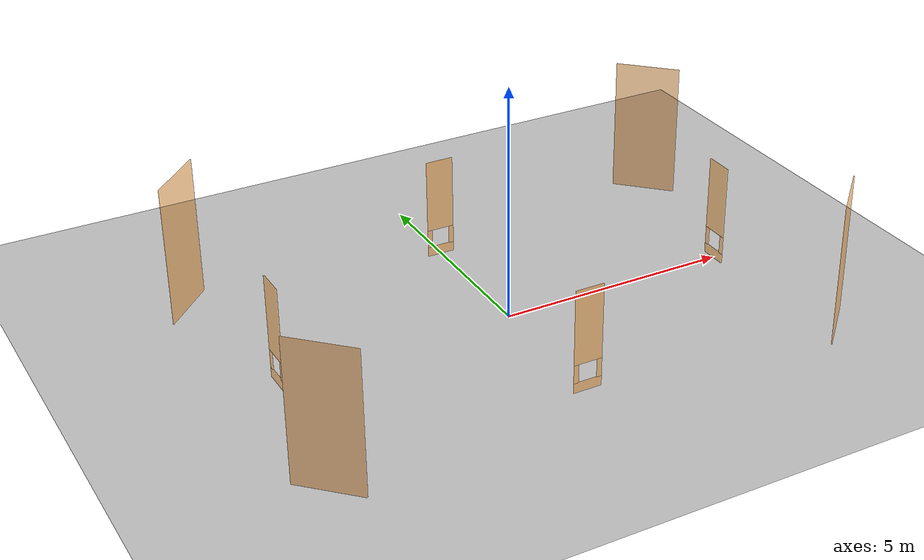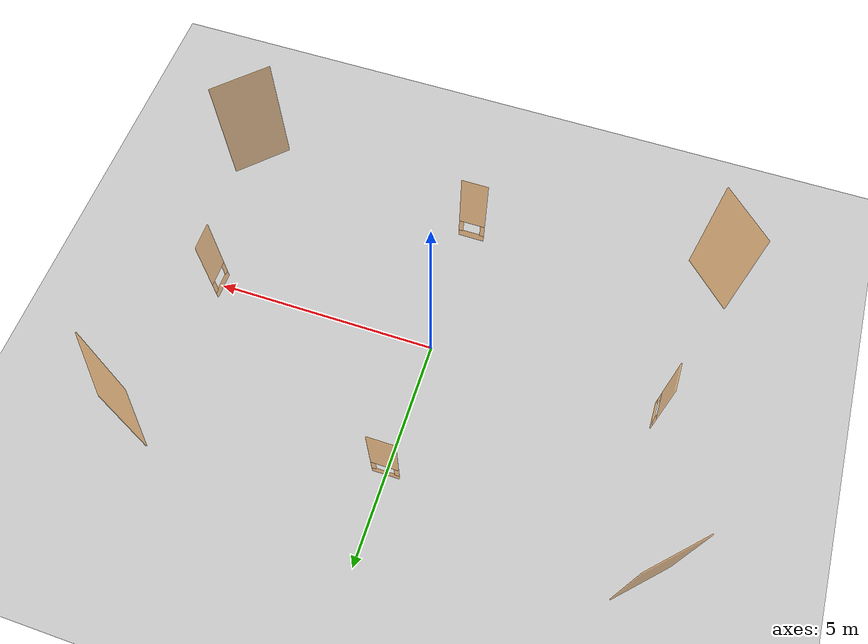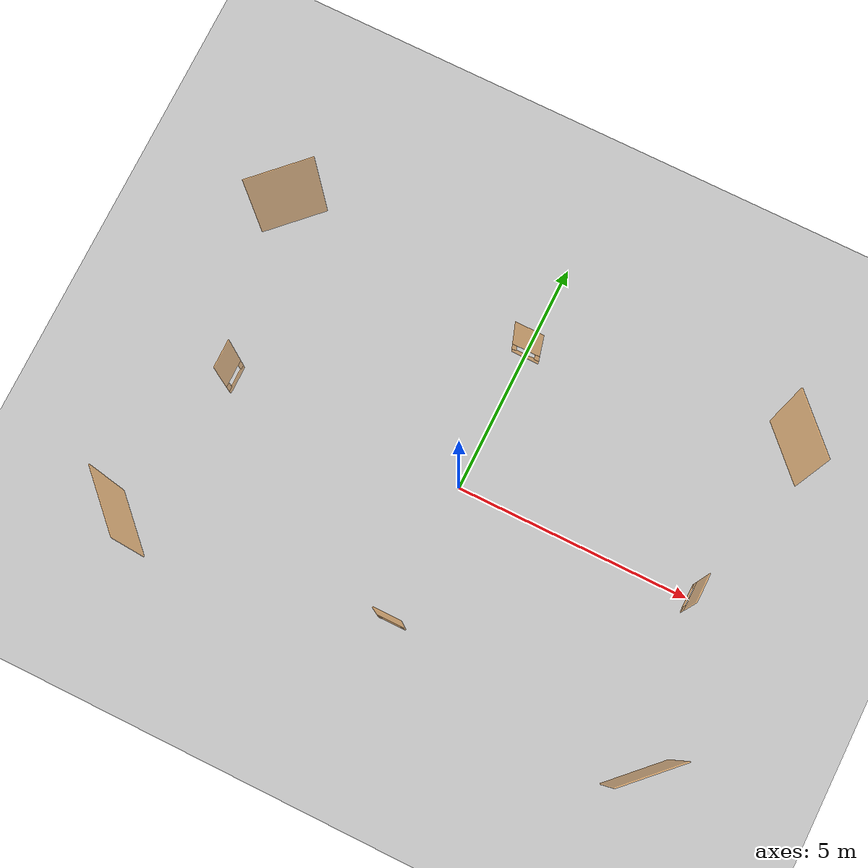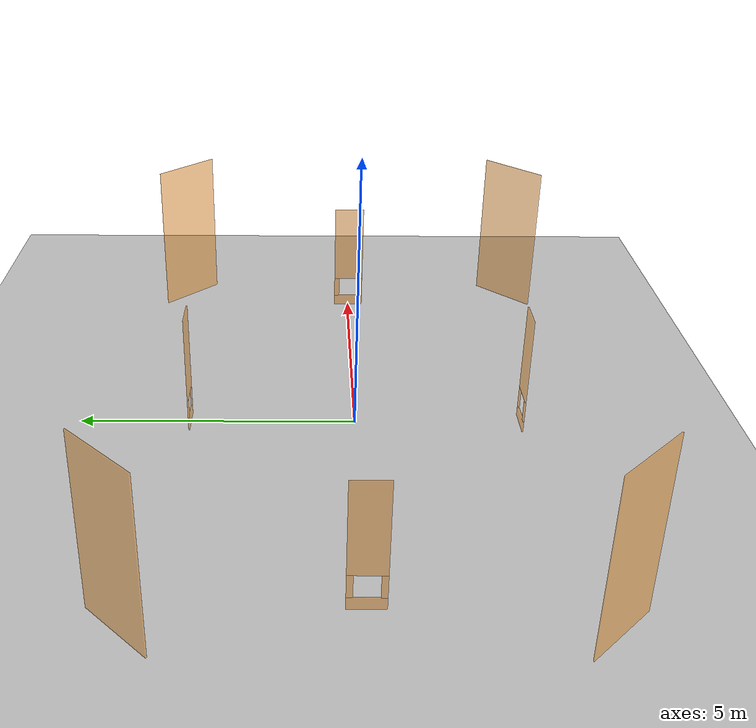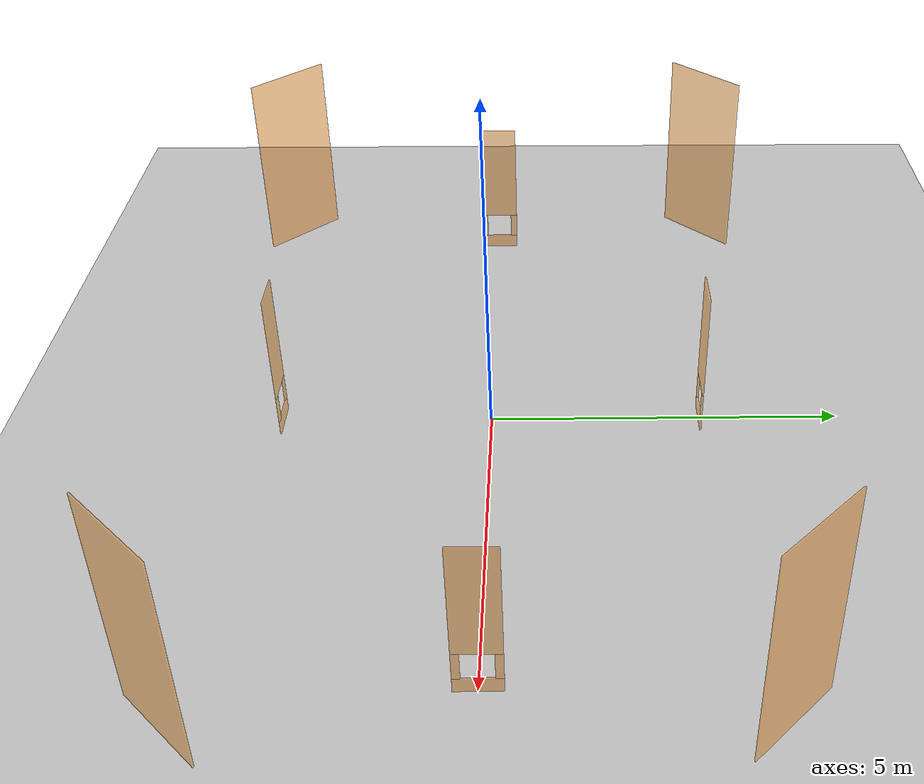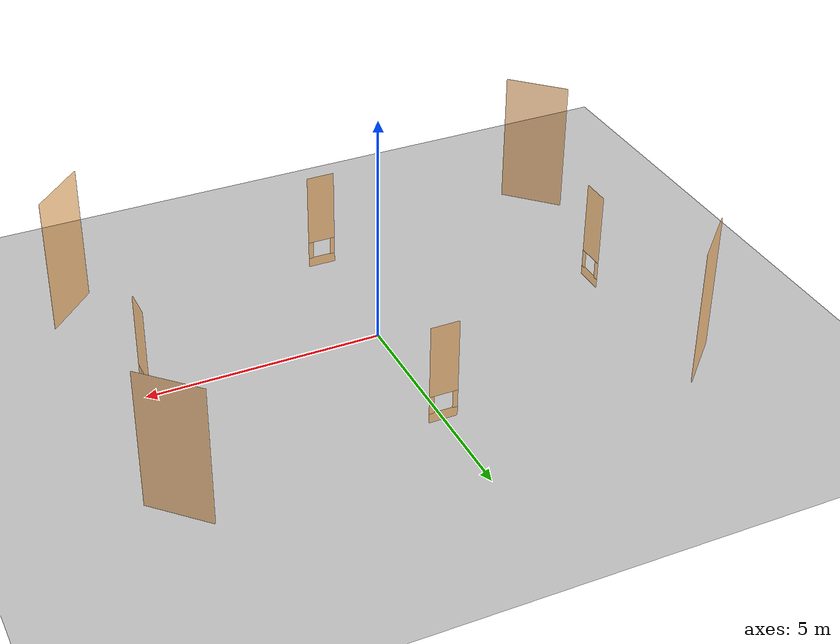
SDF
<sdf version="1.5">
 <world name="default">
  <include><uri>model://sun</uri></include>
  <include><uri>model://ground_plane</uri><pose>0 0 -0.001 0 0 0</pose></include>
  <model name="wall_0">
   <pose frame="''">0 0 0 0 0 0</pose>
   <link name="link_0">
    <gravity>0</gravity>
    <kinematic>1</kinematic>
    <visual name="wall_0_visual_0">
     <pose>5.5 3.5 1.5 0 0 2.35619449019</pose>
     <geometry><box><size>1.41421356237 0.02 3.0</size></box></geometry>
     <material>
      <script>
       <uri>file://media/materials/scripts/gazebo.material</uri>
       <name>Gazebo/DarkOrangeTransparentOverlay</name>
      </script>
     </material>
    </visual>
    <collision name="wall_0_collision_0">
     <pose>5.5 3.5 1.5 0 0 2.35619449019</pose>
     <geometry><box><size>1.41421356237 0.02 3.0</size></box></geometry>
    </collision>
   </link>
  </model>
  <model name="wall_0">
   <pose frame="''">0 0 0 0 0 0</pose>
   <link name="link_0">
    <gravity>0</gravity>
    <kinematic>1</kinematic>
    <visual name="wall_0_visual_0">
     <pose>-5.5 3.5 1.5 0 0 -2.35619449019</pose>
     <geometry><box><size>1.41421356237 0.02 3.0</size></box></geometry>
     <material>
      <script>
       <uri>file://media/materials/scripts/gazebo.material</uri>
       <name>Gazebo/DarkOrangeTransparentOverlay</name>
      </script>
     </material>
    </visual>
    <collision name="wall_0_collision_0">
     <pose>-5.5 3.5 1.5 0 0 -2.35619449019</pose>
     <geometry><box><size>1.41421356237 0.02 3.0</size></box></geometry>
    </collision>
   </link>
  </model>
  <model name="wall_0">
   <pose frame="''">0 0 0 0 0 0</pose>
   <link name="link_0">
    <gravity>0</gravity>
    <kinematic>1</kinematic>
    <visual name="wall_0_visual_0">
     <pose>-5.5 -3.5 1.5 0 0 -0.785398163397</pose>
     <geometry><box><size>1.41421356237 0.02 3.0</size></box></geometry>
     <material>
      <script>
       <uri>file://media/materials/scripts/gazebo.material</uri>
       <name>Gazebo/DarkOrangeTransparentOverlay</name>
      </script>
     </material>
    </visual>
    <collision name="wall_0_collision_0">
     <pose>-5.5 -3.5 1.5 0 0 -0.785398163397</pose>
     <geometry><box><size>1.41421356237 0.02 3.0</size></box></geometry>
    </collision>
   </link>
  </model>
  <model name="wall_0">
   <pose frame="''">0 0 0 0 0 0</pose>
   <link name="link_0">
    <gravity>0</gravity>
    <kinematic>1</kinematic>
    <visual name="wall_0_visual_0">
     <pose>5.5 -3.5 1.5 0 0 0.785398163397</pose>
     <geometry><box><size>1.41421356237 0.02 3.0</size></box></geometry>
     <material>
      <script>
       <uri>file://media/materials/scripts/gazebo.material</uri>
       <name>Gazebo/DarkOrangeTransparentOverlay</name>
      </script>
     </material>
    </visual>
    <collision name="wall_0_collision_0">
     <pose>5.5 -3.5 1.5 0 0 0.785398163397</pose>
     <geometry><box><size>1.41421356237 0.02 3.0</size></box></geometry>
    </collision>
   </link>
  </model>
  <model name="gate_0">
   <pose frame="''">0 0 0 0 0 0</pose>
   <link name="link_0">
    <gravity>0</gravity>
    <kinematic>1</kinematic>
    <visual name="gate_0_visual_0">
     <pose>5.0 0.25 0.41 0 0 -1.57079632679</pose>
     <geometry><box><size>0.1 0.02 0.4</size></box></geometry>
     <material>
      <script>
       <uri>file://media/materials/scripts/gazebo.material</uri>
       <name>Gazebo/DarkOrangeTransparentOverlay</name>
      </script>
     </material>
    </visual>
    <collision name="gate_0_collision_0">
     <pose>5.0 0.25 0.41 0 0 -1.57079632679</pose>
     <geometry><box><size>0.1 0.02 0.4</size></box></geometry>
    </collision>
    <gravity>0</gravity>
    <kinematic>1</kinematic>
    <visual name="gate_0_visual_1">
     <pose>5.0 -0.25 0.41 0 0 -1.57079632679</pose>
     <geometry><box><size>0.1 0.02 0.4</size></box></geometry>
     <material>
      <script>
       <uri>file://media/materials/scripts/gazebo.material</uri>
       <name>Gazebo/DarkOrangeTransparentOverlay</name>
      </script>
     </material>
    </visual>
    <collision name="gate_0_collision_1">
     <pose>5.0 -0.25 0.41 0 0 -1.57079632679</pose>
     <geometry><box><size>0.1 0.02 0.4</size></box></geometry>
    </collision>
    <gravity>0</gravity>
    <kinematic>1</kinematic>
    <visual name="gate_0_visual_2">
     <pose>5.0 0.0 0.105 0 0 -1.57079632679</pose>
     <geometry><box><size>0.6 0.02 0.21</size></box></geometry>
     <material>
      <script>
       <uri>file://media/materials/scripts/gazebo.material</uri>
       <name>Gazebo/DarkOrangeTransparentOverlay</name>
      </script>
     </material>
    </visual>
    <collision name="gate_0_collision_2">
     <pose>5.0 0.0 0.105 0 0 -1.57079632679</pose>
     <geometry><box><size>0.6 0.02 0.21</size></box></geometry>
    </collision>
    <gravity>0</gravity>
    <kinematic>1</kinematic>
    <visual name="gate_0_visual_3">
     <pose>5.0 0.0 1.41 0 0 -1.57079632679</pose>
     <geometry><box><size>0.6 0.02 1.6</size></box></geometry>
     <material>
      <script>
       <uri>file://media/materials/scripts/gazebo.material</uri>
       <name>Gazebo/DarkOrangeTransparentOverlay</name>
      </script>
     </material>
    </visual>
    <collision name="gate_0_collision_3">
     <pose>5.0 0.0 1.41 0 0 -1.57079632679</pose>
     <geometry><box><size>0.6 0.02 1.6</size></box></geometry>
    </collision>
   </link>
  </model>
  <model name="gate_1">
   <pose frame="''">0 0 0 0 0 0</pose>
   <link name="link_0">
    <gravity>0</gravity>
    <kinematic>1</kinematic>
    <visual name="gate_1_visual_0">
     <pose>-0.25 3.0 0.41 0 0 0.0</pose>
     <geometry><box><size>0.1 0.02 0.4</size></box></geometry>
     <material>
      <script>
       <uri>file://media/materials/scripts/gazebo.material</uri>
       <name>Gazebo/DarkOrangeTransparentOverlay</name>
      </script>
     </material>
    </visual>
    <collision name="gate_1_collision_0">
     <pose>-0.25 3.0 0.41 0 0 0.0</pose>
     <geometry><box><size>0.1 0.02 0.4</size></box></geometry>
    </collision>
    <gravity>0</gravity>
    <kinematic>1</kinematic>
    <visual name="gate_1_visual_1">
     <pose>0.25 3.0 0.41 0 0 0.0</pose>
     <geometry><box><size>0.1 0.02 0.4</size></box></geometry>
     <material>
      <script>
       <uri>file://media/materials/scripts/gazebo.material</uri>
       <name>Gazebo/DarkOrangeTransparentOverlay</name>
      </script>
     </material>
    </visual>
    <collision name="gate_1_collision_1">
     <pose>0.25 3.0 0.41 0 0 0.0</pose>
     <geometry><box><size>0.1 0.02 0.4</size></box></geometry>
    </collision>
    <gravity>0</gravity>
    <kinematic>1</kinematic>
    <visual name="gate_1_visual_2">
     <pose>0.0 3.0 0.105 0 0 0.0</pose>
     <geometry><box><size>0.6 0.02 0.21</size></box></geometry>
     <material>
      <script>
       <uri>file://media/materials/scripts/gazebo.material</uri>
       <name>Gazebo/DarkOrangeTransparentOverlay</name>
      </script>
     </material>
    </visual>
    <collision name="gate_1_collision_2">
     <pose>0.0 3.0 0.105 0 0 0.0</pose>
     <geometry><box><size>0.6 0.02 0.21</size></box></geometry>
    </collision>
    <gravity>0</gravity>
    <kinematic>1</kinematic>
    <visual name="gate_1_visual_3">
     <pose>0.0 3.0 1.41 0 0 0.0</pose>
     <geometry><box><size>0.6 0.02 1.6</size></box></geometry>
     <material>
      <script>
       <uri>file://media/materials/scripts/gazebo.material</uri>
       <name>Gazebo/DarkOrangeTransparentOverlay</name>
      </script>
     </material>
    </visual>
    <collision name="gate_1_collision_3">
     <pose>0.0 3.0 1.41 0 0 0.0</pose>
     <geometry><box><size>0.6 0.02 1.6</size></box></geometry>
    </collision>
   </link>
  </model>
  <model name="gate_2">
   <pose frame="''">0 0 0 0 0 0</pose>
   <link name="link_0">
    <gravity>0</gravity>
    <kinematic>1</kinematic>
    <visual name="gate_2_visual_0">
     <pose>-5.0 -0.25 0.41 0 0 1.57079632679</pose>
     <geometry><box><size>0.1 0.02 0.4</size></box></geometry>
     <material>
      <script>
       <uri>file://media/materials/scripts/gazebo.material</uri>
       <name>Gazebo/DarkOrangeTransparentOverlay</name>
      </script>
     </material>
    </visual>
    <collision name="gate_2_collision_0">
     <pose>-5.0 -0.25 0.41 0 0 1.57079632679</pose>
     <geometry><box><size>0.1 0.02 0.4</size></box></geometry>
    </collision>
    <gravity>0</gravity>
    <kinematic>1</kinematic>
    <visual name="gate_2_visual_1">
     <pose>-5.0 0.25 0.41 0 0 1.57079632679</pose>
     <geometry><box><size>0.1 0.02 0.4</size></box></geometry>
     <material>
      <script>
       <uri>file://media/materials/scripts/gazebo.material</uri>
       <name>Gazebo/DarkOrangeTransparentOverlay</name>
      </script>
     </material>
    </visual>
    <collision name="gate_2_collision_1">
     <pose>-5.0 0.25 0.41 0 0 1.57079632679</pose>
     <geometry><box><size>0.1 0.02 0.4</size></box></geometry>
    </collision>
    <gravity>0</gravity>
    <kinematic>1</kinematic>
    <visual name="gate_2_visual_2">
     <pose>-5.0 0.0 0.105 0 0 1.57079632679</pose>
     <geometry><box><size>0.6 0.02 0.21</size></box></geometry>
     <material>
      <script>
       <uri>file://media/materials/scripts/gazebo.material</uri>
       <name>Gazebo/DarkOrangeTransparentOverlay</name>
      </script>
     </material>
    </visual>
    <collision name="gate_2_collision_2">
     <pose>-5.0 0.0 0.105 0 0 1.57079632679</pose>
     <geometry><box><size>0.6 0.02 0.21</size></box></geometry>
    </collision>
    <gravity>0</gravity>
    <kinematic>1</kinematic>
    <visual name="gate_2_visual_3">
     <pose>-5.0 0.0 1.41 0 0 1.57079632679</pose>
     <geometry><box><size>0.6 0.02 1.6</size></box></geometry>
     <material>
      <script>
       <uri>file://media/materials/scripts/gazebo.material</uri>
       <name>Gazebo/DarkOrangeTransparentOverlay</name>
      </script>
     </material>
    </visual>
    <collision name="gate_2_collision_3">
     <pose>-5.0 0.0 1.41 0 0 1.57079632679</pose>
     <geometry><box><size>0.6 0.02 1.6</size></box></geometry>
    </collision>
   </link>
  </model>
  <model name="gate_3">
   <pose frame="''">0 0 0 0 0 0</pose>
   <link name="link_0">
    <gravity>0</gravity>
    <kinematic>1</kinematic>
    <visual name="gate_3_visual_0">
     <pose>0.25 -3.0 0.41 0 0 3.14159265359</pose>
     <geometry><box><size>0.1 0.02 0.4</size></box></geometry>
     <material>
      <script>
       <uri>file://media/materials/scripts/gazebo.material</uri>
       <name>Gazebo/DarkOrangeTransparentOverlay</name>
      </script>
     </material>
    </visual>
    <collision name="gate_3_collision_0">
     <pose>0.25 -3.0 0.41 0 0 3.14159265359</pose>
     <geometry><box><size>0.1 0.02 0.4</size></box></geometry>
    </collision>
    <gravity>0</gravity>
    <kinematic>1</kinematic>
    <visual name="gate_3_visual_1">
     <pose>-0.25 -3.0 0.41 0 0 3.14159265359</pose>
     <geometry><box><size>0.1 0.02 0.4</size></box></geometry>
     <material>
      <script>
       <uri>file://media/materials/scripts/gazebo.material</uri>
       <name>Gazebo/DarkOrangeTransparentOverlay</name>
      </script>
     </material>
    </visual>
    <collision name="gate_3_collision_1">
     <pose>-0.25 -3.0 0.41 0 0 3.14159265359</pose>
     <geometry><box><size>0.1 0.02 0.4</size></box></geometry>
    </collision>
    <gravity>0</gravity>
    <kinematic>1</kinematic>
    <visual name="gate_3_visual_2">
     <pose>0.0 -3.0 0.105 0 0 3.14159265359</pose>
     <geometry><box><size>0.6 0.02 0.21</size></box></geometry>
     <material>
      <script>
       <uri>file://media/materials/scripts/gazebo.material</uri>
       <name>Gazebo/DarkOrangeTransparentOverlay</name>
      </script>
     </material>
    </visual>
    <collision name="gate_3_collision_2">
     <pose>0.0 -3.0 0.105 0 0 3.14159265359</pose>
     <geometry><box><size>0.6 0.02 0.21</size></box></geometry>
    </collision>
    <gravity>0</gravity>
    <kinematic>1</kinematic>
    <visual name="gate_3_visual_3">
     <pose>0.0 -3.0 1.41 0 0 3.14159265359</pose>
     <geometry><box><size>0.6 0.02 1.6</size></box></geometry>
     <material>
      <script>
       <uri>file://media/materials/scripts/gazebo.material</uri>
       <name>Gazebo/DarkOrangeTransparentOverlay</name>
      </script>
     </material>
    </visual>
    <collision name="gate_3_collision_3">
     <pose>0.0 -3.0 1.41 0 0 3.14159265359</pose>
     <geometry><box><size>0.6 0.02 1.6</size></box></geometry>
    </collision>
   </link>
  </model>
  <physics default="0" name="default_physics" type="ode">
   <gravity>0 0 -9.8066</gravity>
   <ode>
    <solver>
     <type>quick</type>
     <iters>20</iters>
     <sor>1.3</sor>
     <use_dynamic_moi_rescaling>0</use_dynamic_moi_rescaling>
    </solver>
    <constraints>
     <cfm>0</cfm>
     <erp>0.2</erp>
     <contact_max_correcting_vel>100</contact_max_correcting_vel>
     <contact_surface_layer>0.001</contact_surface_layer>
    </constraints>
   </ode>
   <max_step_size>0.002</max_step_size>
   <real_time_factor>1</real_time_factor>
   <real_time_update_rate>500</real_time_update_rate>
   <magnetic_field>6e-06 2.3e-05 -4.2e-05</magnetic_field>
  </physics>
 </world>
</sdf>
